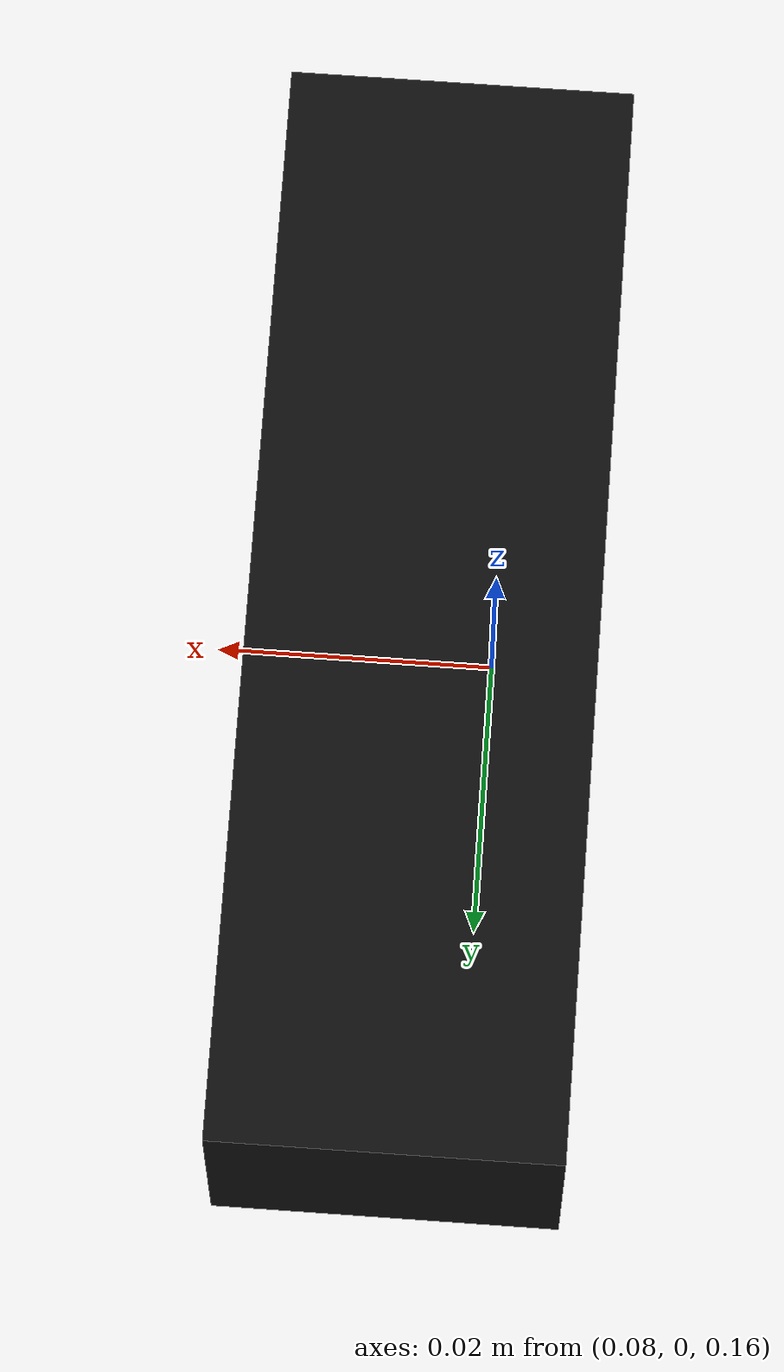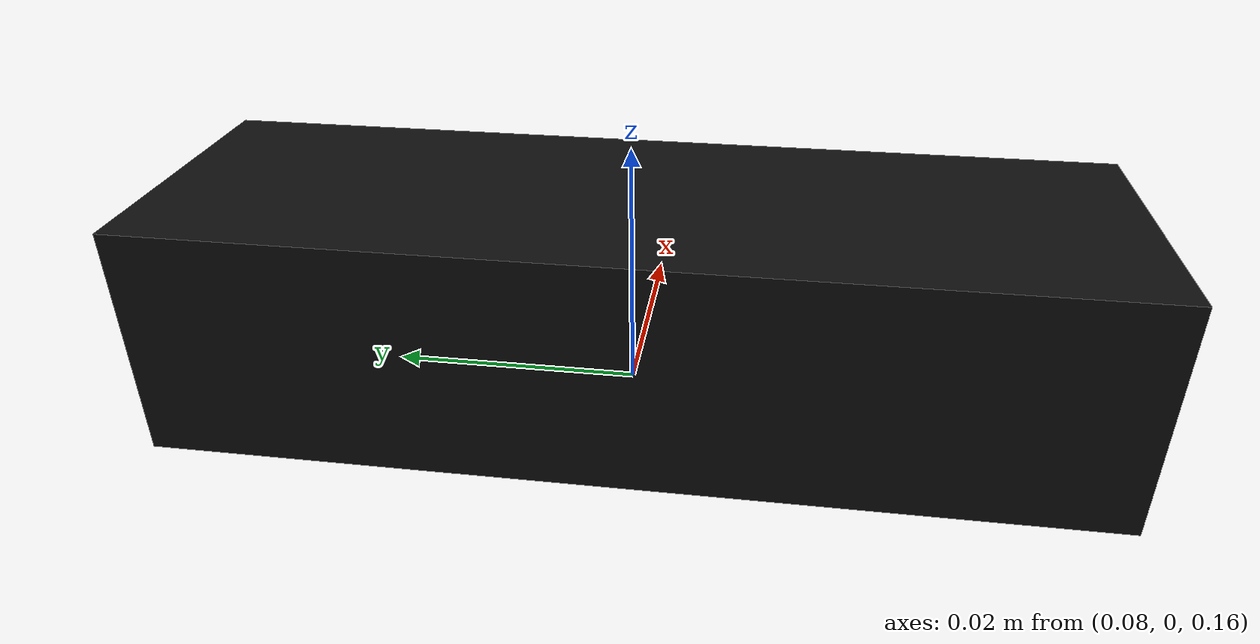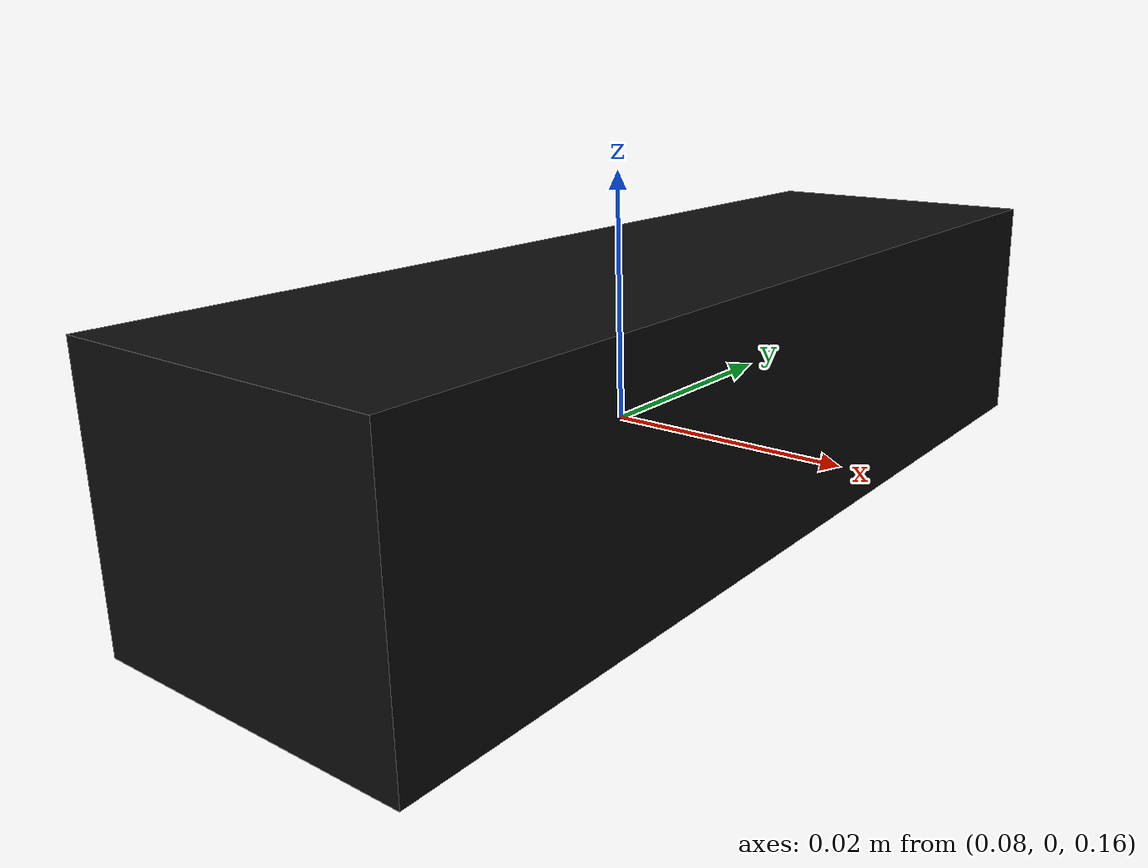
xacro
<?xml version="1.0"?>
<!--
  실물 웹캠 TF (real_dock.launch.xml 이 따로 띄운다)
  !!! cam_x / cam_y / cam_z 는 줄자로 재서 바꾼다 (base_link = 바퀴축 중앙)
      cam_x: 바퀴축 → 렌즈 (전방), cam_y: 왼쪽 +, cam_z: (바닥→렌즈) - (바닥→바퀴축)
-->
<robot name="vicpinky_webcam" xmlns:xacro="http://www.ros.org/wiki/xacro">
  <xacro:arg name="cam_x" default="0.085"/>
  <xacro:arg name="cam_y" default="0.0"/>
  <xacro:arg name="cam_z" default="0.164"/>
  <!-- 아래로 숙이면 + (rad) -->
  <xacro:arg name="cam_pitch" default="0.0"/>

  <xacro:include filename="$(find vicpinky_docking)/urdf/webcam.xacro"/>

  <link name="base_link"/>

  <xacro:webcam parent="base_link" optical_frame="camera_optical_frame"
                x="$(arg cam_x)" y="$(arg cam_y)" z="$(arg cam_z)" pitch="$(arg cam_pitch)"/>
</robot>

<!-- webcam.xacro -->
<!--
  카메라 링크 매크로 (시뮬·실물 공용): parent → camera_link → 광학 프레임 (z 전방, x 오른쪽, y 아래)
-->
<robot xmlns:xacro="http://www.ros.org/wiki/xacro">
  <xacro:macro name="webcam" params="parent optical_frame x y z roll:=0 pitch:=0 yaw:=0">
    <joint name="camera_joint" type="fixed">
      <parent link="${parent}"/>
      <child link="camera_link"/>
      <origin xyz="${x} ${y} ${z}" rpy="${roll} ${pitch} ${yaw}"/>
    </joint>

    <link name="camera_link">
      <visual>
        <geometry><box size="0.025 0.08 0.02"/></geometry>
        <material name="camera_black"><color rgba="0.05 0.05 0.05 1"/></material>
      </visual>
    </link>

    <joint name="camera_optical_joint" type="fixed">
      <parent link="camera_link"/>
      <child link="${optical_frame}"/>
      <origin xyz="0 0 0" rpy="${-pi/2} 0 ${-pi/2}"/>
    </joint>

    <link name="${optical_frame}"/>
  </xacro:macro>
</robot>
